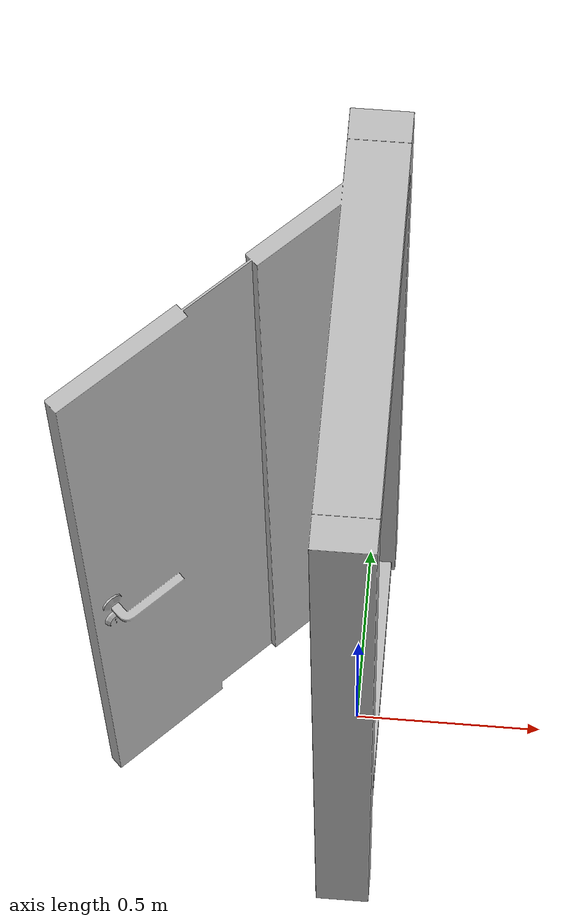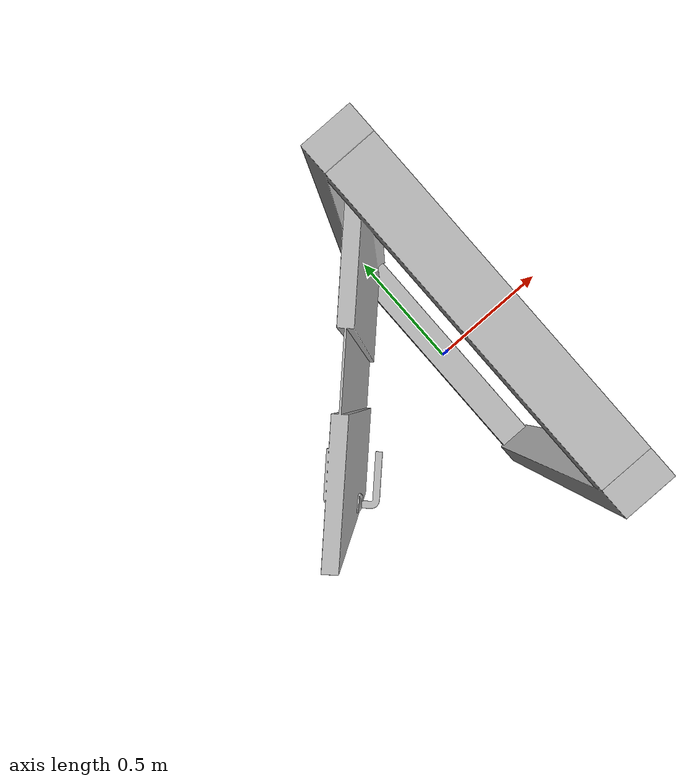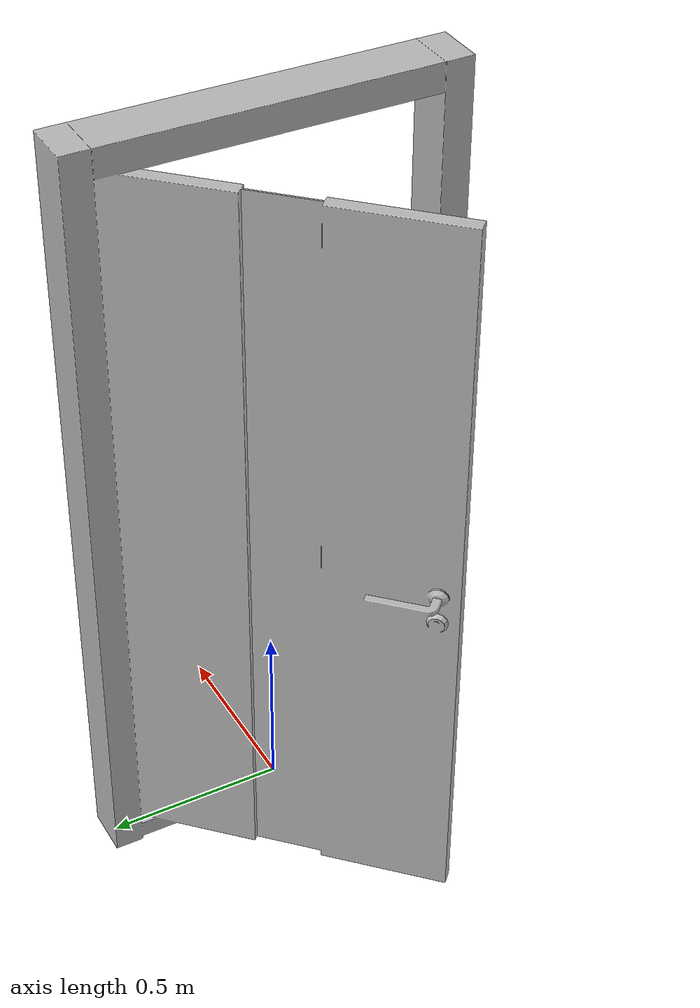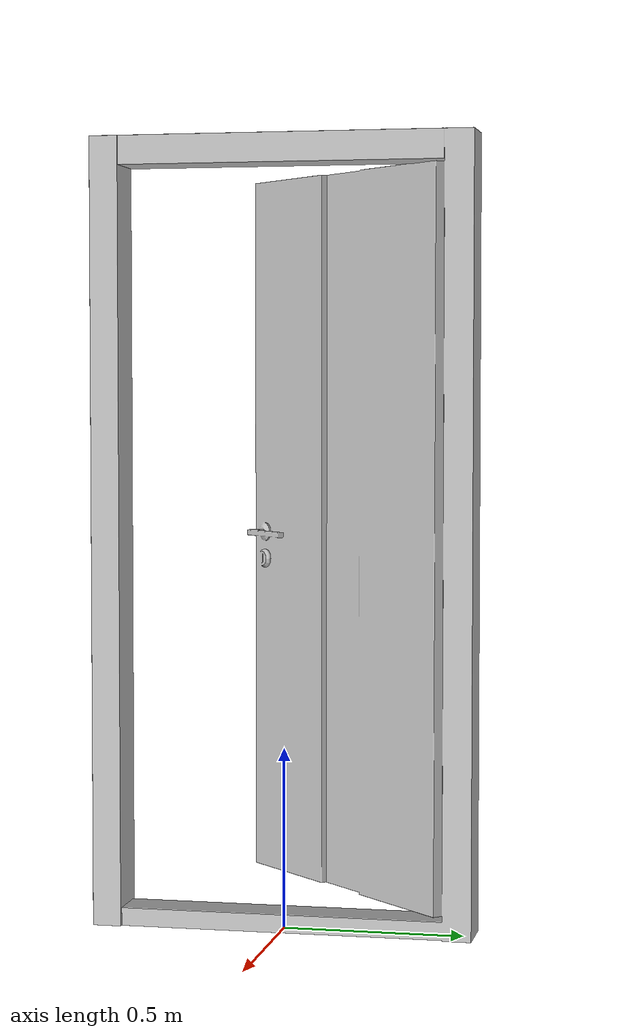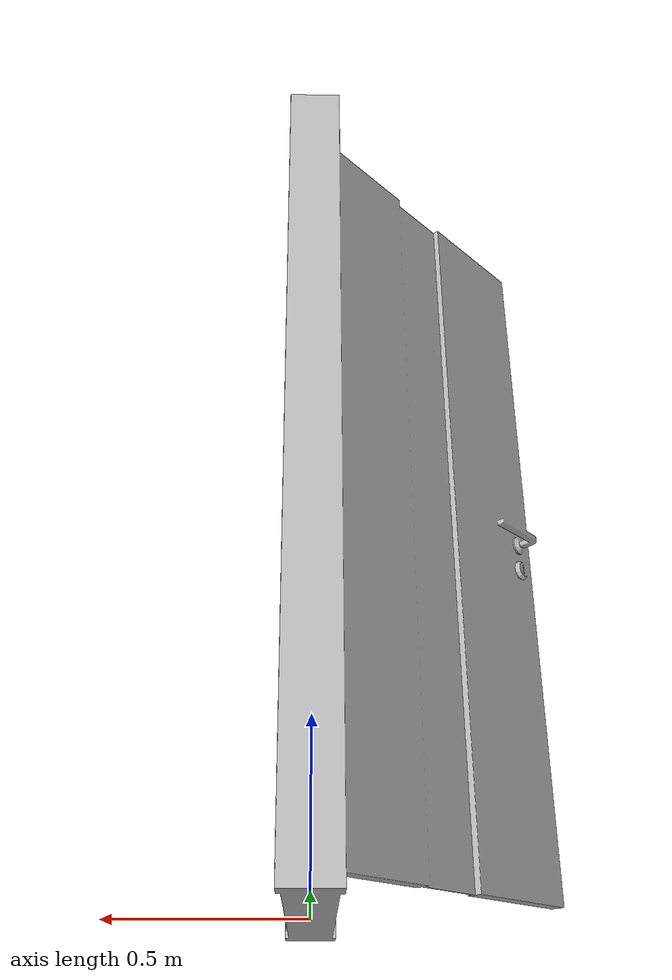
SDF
<?xml version='1.0'?>
<sdf version='1.4'>
  <model name='759'>
    <pose>0 0 0 0 0 0</pose>
    <static>true</static>
    <link name='link'>
      <collision name='collision'>
        <pose>0 0 0 0 0 0</pose>
        <geometry>
          <box>
            <size>0.729998 1.06 2</size>
          </box>
        </geometry>
      </collision>
      <visual name='visual'>
        <pose>0 0 0 0 0 0</pose>
        <geometry>
          <mesh><uri>model://759/759.dae</uri></mesh>
        </geometry>
      </visual>
    </link>
  </model>
</sdf>
